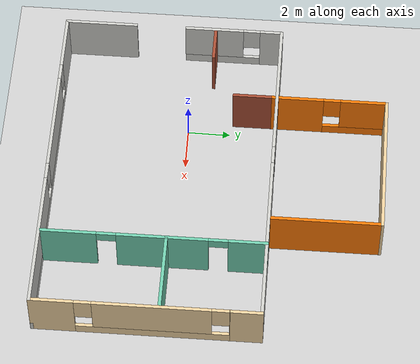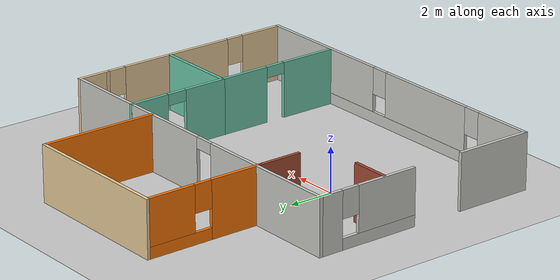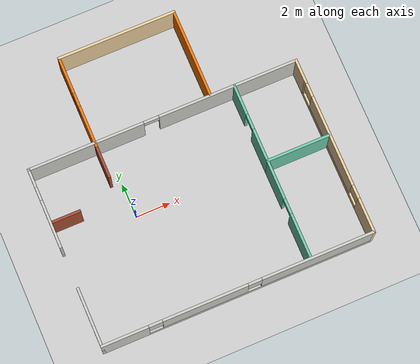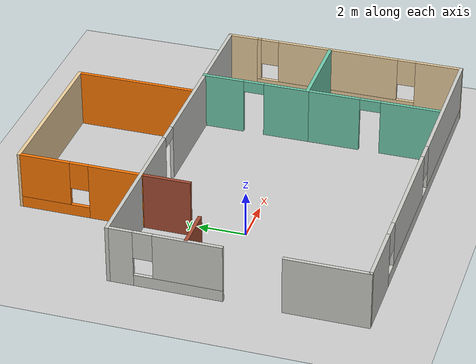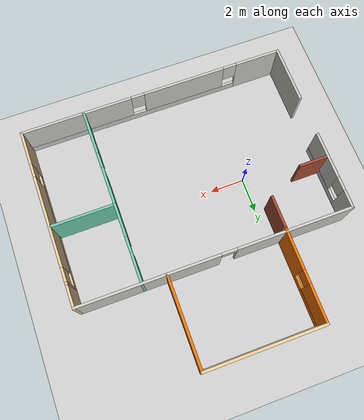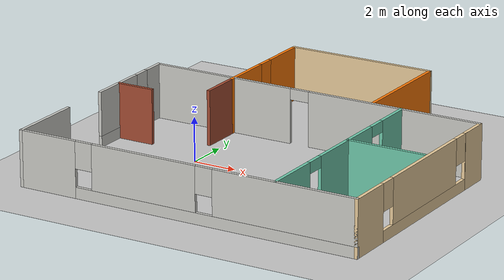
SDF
<sdf version="1.6">
 <world name="default">
  <model name="ground_plane">
   <static>1</static>
   <link name="link">
    <collision name="collision">
     <geometry><plane><normal>0 0 1</normal><size>100 100</size></plane></geometry>
     <surface>
      <contact><collide_bitmask>65535</collide_bitmask></contact>
      <friction><ode><mu>100</mu><mu2>50</mu2></ode></friction>
     </surface>
    </collision>
    <visual name="visual">
     <cast_shadows>0</cast_shadows>
     <geometry><plane><normal>0 0 1</normal><size>100 100</size></plane></geometry>
     <material>
      <script><uri>file://media/materials/scripts/gazebo.material</uri><name>Gazebo/Grey</name></script>
     </material>
    </visual>
   </link>
  </model>
  <model name="Building">
   <pose>3.4271 1.57878 0 0 -0 0</pose>
   <link name="Wall_0">
    <collision name="Wall_0_Collision">
     <geometry><box><size>3.5 0.15 2.5</size></box></geometry>
     <pose>0 0 1.25 0 -0 0</pose>
    </collision>
    <visual name="Wall_0_Visual">
     <pose>0 0 1.25 0 -0 0</pose>
     <geometry><box><size>3.5 0.15 2.5</size></box></geometry>
     <material>
      <script><uri>file://media/materials/scripts/gazebo.material</uri><name>Gazebo/CeilingTiled</name></script>
      <ambient>0.760784 0.662745 0.627451 1</ambient>
     </material>
     <meta><layer>0</layer></meta>
    </visual>
    <pose>-7.925 -6.15604 0 0 0 -1.5708</pose>
   </link>
   <link name="Wall_1">
    <pose>0 -7.83104 0 0 -0 0</pose>
    <visual name="Wall_1_Visual_0">
     <pose>-6.61503 0 1.25 0 -0 0</pose>
     <geometry><box><size>2.76994 0.15 2.5</size></box></geometry>
     <material>
      <script><uri>file://media/materials/scripts/gazebo.material</uri><name>Gazebo/CeilingTiled</name></script>
      <ambient>0.760784 0.662745 0.627451 1</ambient>
     </material>
     <meta><layer>0</layer></meta>
    </visual>
    <collision name="Wall_1_Collision_0">
     <geometry><box><size>2.76994 0.15 2.5</size></box></geometry>
     <pose>-6.61503 0 1.25 0 -0 0</pose>
    </collision>
    <visual name="Wall_1_Visual_1">
     <pose>1.38497 0 0.25 0 -0 0</pose>
     <geometry><box><size>13.2301 0.15 0.5</size></box></geometry>
     <material>
      <script><uri>file://media/materials/scripts/gazebo.material</uri><name>Gazebo/CeilingTiled</name></script>
      <ambient>0.760784 0.662745 0.627451 1</ambient>
     </material>
     <meta><layer>0</layer></meta>
    </visual>
    <collision name="Wall_1_Collision_1">
     <geometry><box><size>13.2301 0.15 0.5</size></box></geometry>
     <pose>1.38497 0 0.25 0 -0 0</pose>
    </collision>
    <visual name="Wall_1_Visual_2">
     <pose>-1.94093 0 1.5 0 -0 0</pose>
     <geometry><box><size>4.97827 0.15 2</size></box></geometry>
     <material>
      <script><uri>file://media/materials/scripts/gazebo.material</uri><name>Gazebo/CeilingTiled</name></script>
      <ambient>0.760784 0.662745 0.627451 1</ambient>
     </material>
     <meta><layer>0</layer></meta>
    </visual>
    <collision name="Wall_1_Collision_2">
     <geometry><box><size>4.97827 0.15 2</size></box></geometry>
     <pose>-1.94093 0 1.5 0 -0 0</pose>
    </collision>
    <visual name="Wall_1_Visual_3">
     <pose>4.6741 0 1.5 0 -0 0</pose>
     <geometry><box><size>6.65179 0.15 2</size></box></geometry>
     <material>
      <script><uri>file://media/materials/scripts/gazebo.material</uri><name>Gazebo/CeilingTiled</name></script>
      <ambient>0.760784 0.662745 0.627451 1</ambient>
     </material>
     <meta><layer>0</layer></meta>
    </visual>
    <collision name="Wall_1_Collision_3">
     <geometry><box><size>6.65179 0.15 2</size></box></geometry>
     <pose>4.6741 0 1.5 0 -0 0</pose>
    </collision>
    <visual name="Wall_1_Visual_4">
     <pose>-4.83006 0 1.9 0 -0 0</pose>
     <geometry><box><size>0.8 0.15 1.2</size></box></geometry>
     <material>
      <script><uri>file://media/materials/scripts/gazebo.material</uri><name>Gazebo/CeilingTiled</name></script>
      <ambient>0.760784 0.662745 0.627451 1</ambient>
     </material>
     <meta><layer>0</layer></meta>
    </visual>
    <collision name="Wall_1_Collision_4">
     <geometry><box><size>0.8 0.15 1.2</size></box></geometry>
     <pose>-4.83006 0 1.9 0 -0 0</pose>
    </collision>
    <visual name="Wall_1_Visual_5">
     <pose>0.948206 0 1.9 0 -0 0</pose>
     <geometry><box><size>0.8 0.15 1.2</size></box></geometry>
     <material>
      <script><uri>file://media/materials/scripts/gazebo.material</uri><name>Gazebo/CeilingTiled</name></script>
      <ambient>0.760784 0.662745 0.627451 1</ambient>
     </material>
     <meta><layer>0</layer></meta>
    </visual>
    <collision name="Wall_1_Collision_5">
     <geometry><box><size>0.8 0.15 1.2</size></box></geometry>
     <pose>0.948206 0 1.9 0 -0 0</pose>
    </collision>
   </link>
   <link name="Wall_11">
    <pose>4.21981 0.321249 0 0 0 -1.5708</pose>
    <visual name="Wall_11_Visual_0">
     <pose>-1.45124 0 1.25 0 -0 0</pose>
     <geometry><box><size>1.84753 0.15 2.5</size></box></geometry>
     <material>
      <script><uri>file://media/materials/scripts/gazebo.material</uri><name>Gazebo/Grey</name></script>
      <ambient>0.435294 0.796078 0.67451 1</ambient>
     </material>
     <meta><layer>0</layer></meta>
    </visual>
    <collision name="Wall_11_Collision_0">
     <geometry><box><size>1.84753 0.15 2.5</size></box></geometry>
     <pose>-1.45124 0 1.25 0 -0 0</pose>
    </collision>
    <visual name="Wall_11_Visual_1">
     <pose>1.37376 0 1.25 0 -0 0</pose>
     <geometry><box><size>2.00247 0.15 2.5</size></box></geometry>
     <material>
      <script><uri>file://media/materials/scripts/gazebo.material</uri><name>Gazebo/Grey</name></script>
      <ambient>0.435294 0.796078 0.67451 1</ambient>
     </material>
     <meta><layer>0</layer></meta>
    </visual>
    <collision name="Wall_11_Collision_1">
     <geometry><box><size>2.00247 0.15 2.5</size></box></geometry>
     <pose>1.37376 0 1.25 0 -0 0</pose>
    </collision>
    <visual name="Wall_11_Visual_2">
     <pose>-0.077469 0 2.25 0 -0 0</pose>
     <geometry><box><size>0.9 0.15 0.5</size></box></geometry>
     <material>
      <script><uri>file://media/materials/scripts/gazebo.material</uri><name>Gazebo/Grey</name></script>
      <ambient>0.435294 0.796078 0.67451 1</ambient>
     </material>
     <meta><layer>0</layer></meta>
    </visual>
    <collision name="Wall_11_Collision_2">
     <geometry><box><size>0.9 0.15 0.5</size></box></geometry>
     <pose>-0.077469 0 2.25 0 -0 0</pose>
    </collision>
   </link>
   <link name="Wall_12">
    <collision name="Wall_12_Collision">
     <geometry><box><size>3.75 0.15 2.5</size></box></geometry>
     <pose>0 0 1.25 0 -0 0</pose>
    </collision>
    <visual name="Wall_12_Visual">
     <pose>0 0 1.25 0 -0 0</pose>
     <geometry><box><size>3.75 0.15 2.5</size></box></geometry>
     <material>
      <script><uri>file://media/materials/scripts/gazebo.material</uri><name>Gazebo/Grey</name></script>
      <ambient>0.435294 0.796078 0.67451 1</ambient>
     </material>
     <meta><layer>0</layer></meta>
    </visual>
    <pose>6.01981 -1.97875 0 0 -0 0</pose>
   </link>
   <link name="Wall_15">
    <pose>-4.03782 5.07174 0 0 -0 1.5708</pose>
    <visual name="Wall_15_Visual_0">
     <pose>-1.46972 0 1.25 0 -0 0</pose>
     <geometry><box><size>2.48164 0.15 2.5</size></box></geometry>
     <material>
      <script><uri>file://media/materials/scripts/gazebo.material</uri><name>Gazebo/Grey</name></script>
      <ambient>0.996078 0.47451 0.0196078 1</ambient>
     </material>
     <meta><layer>0</layer></meta>
    </visual>
    <collision name="Wall_15_Collision_0">
     <geometry><box><size>2.48164 0.15 2.5</size></box></geometry>
     <pose>-1.46972 0 1.25 0 -0 0</pose>
    </collision>
    <visual name="Wall_15_Visual_1">
     <pose>1.24082 0 0.25 0 -0 0</pose>
     <geometry><box><size>2.93944 0.15 0.5</size></box></geometry>
     <material>
      <script><uri>file://media/materials/scripts/gazebo.material</uri><name>Gazebo/Grey</name></script>
      <ambient>0.996078 0.47451 0.0196078 1</ambient>
     </material>
     <meta><layer>0</layer></meta>
    </visual>
    <collision name="Wall_15_Collision_1">
     <geometry><box><size>2.93944 0.15 0.5</size></box></geometry>
     <pose>1.24082 0 0.25 0 -0 0</pose>
    </collision>
    <visual name="Wall_15_Visual_2">
     <pose>1.64082 0 1.5 0 -0 0</pose>
     <geometry><box><size>2.13944 0.15 2</size></box></geometry>
     <material>
      <script><uri>file://media/materials/scripts/gazebo.material</uri><name>Gazebo/Grey</name></script>
      <ambient>0.996078 0.47451 0.0196078 1</ambient>
     </material>
     <meta><layer>0</layer></meta>
    </visual>
    <collision name="Wall_15_Collision_2">
     <geometry><box><size>2.13944 0.15 2</size></box></geometry>
     <pose>1.64082 0 1.5 0 -0 0</pose>
    </collision>
    <visual name="Wall_15_Visual_3">
     <pose>0.1711 0 1.9 0 -0 0</pose>
     <geometry><box><size>0.8 0.15 1.2</size></box></geometry>
     <material>
      <script><uri>file://media/materials/scripts/gazebo.material</uri><name>Gazebo/Grey</name></script>
      <ambient>0.996078 0.47451 0.0196078 1</ambient>
     </material>
     <meta><layer>0</layer></meta>
    </visual>
    <collision name="Wall_15_Collision_3">
     <geometry><box><size>0.8 0.15 1.2</size></box></geometry>
     <pose>0.1711 0 1.9 0 -0 0</pose>
    </collision>
   </link>
   <link name="Wall_16">
    <collision name="Wall_16_Collision">
     <geometry><box><size>7 0.15 2.5</size></box></geometry>
     <pose>0 0 1.25 0 -0 0</pose>
    </collision>
    <visual name="Wall_16_Visual">
     <pose>0 0 1.25 0 -0 0</pose>
     <geometry><box><size>7 0.15 2.5</size></box></geometry>
     <material>
      <script><uri>file://media/materials/scripts/gazebo.material</uri><name>Gazebo/Grey</name></script>
      <ambient>0.921569 0.807843 0.615686 1</ambient>
     </material>
     <meta><layer>0</layer></meta>
    </visual>
    <pose>-0.612818 7.83104 0 0 -0 0</pose>
   </link>
   <link name="Wall_17">
    <collision name="Wall_17_Collision">
     <geometry><box><size>5.17108 0.15 2.5</size></box></geometry>
     <pose>0 0 1.25 0 -0 0</pose>
    </collision>
    <visual name="Wall_17_Visual">
     <pose>0 0 1.25 0 -0 0</pose>
     <geometry><box><size>5.17108 0.15 2.5</size></box></geometry>
     <material>
      <script><uri>file://media/materials/scripts/gazebo.material</uri><name>Gazebo/Grey</name></script>
      <ambient>0.996078 0.47451 0.0196078 1</ambient>
     </material>
     <meta><layer>0</layer></meta>
    </visual>
    <pose>2.81218 5.19674 0 0 0 -1.5708</pose>
   </link>
   <link name="Wall_19">
    <pose>4.21981 -4.90375 0 0 0 -1.5708</pose>
    <visual name="Wall_19_Visual_0">
     <pose>-1.80811 0 1.25 0 -0 0</pose>
     <geometry><box><size>2.38377 0.15 2.5</size></box></geometry>
     <material>
      <script><uri>file://media/materials/scripts/gazebo.material</uri><name>Gazebo/Grey</name></script>
      <ambient>0.435294 0.796078 0.67451 1</ambient>
     </material>
     <meta><layer>0</layer></meta>
    </visual>
    <collision name="Wall_19_Collision_0">
     <geometry><box><size>2.38377 0.15 2.5</size></box></geometry>
     <pose>-1.80811 0 1.25 0 -0 0</pose>
    </collision>
    <visual name="Wall_19_Visual_1">
     <pose>1.64189 0 1.25 0 -0 0</pose>
     <geometry><box><size>2.71623 0.15 2.5</size></box></geometry>
     <material>
      <script><uri>file://media/materials/scripts/gazebo.material</uri><name>Gazebo/Grey</name></script>
      <ambient>0.435294 0.796078 0.67451 1</ambient>
     </material>
     <meta><layer>0</layer></meta>
    </visual>
    <collision name="Wall_19_Collision_1">
     <geometry><box><size>2.71623 0.15 2.5</size></box></geometry>
     <pose>1.64189 0 1.25 0 -0 0</pose>
    </collision>
    <visual name="Wall_19_Visual_2">
     <pose>-0.166229 0 2.25 0 -0 0</pose>
     <geometry><box><size>0.9 0.15 0.5</size></box></geometry>
     <material>
      <script><uri>file://media/materials/scripts/gazebo.material</uri><name>Gazebo/Grey</name></script>
      <ambient>0.435294 0.796078 0.67451 1</ambient>
     </material>
     <meta><layer>0</layer></meta>
    </visual>
    <collision name="Wall_19_Collision_2">
     <geometry><box><size>0.9 0.15 0.5</size></box></geometry>
     <pose>-0.166229 0 2.25 0 -0 0</pose>
    </collision>
   </link>
   <link name="Wall_2">
    <pose>7.925 -3.28104 0 0 -0 1.5708</pose>
    <visual name="Wall_2_Visual_0">
     <pose>-3.58851 0 1.25 0 -0 0</pose>
     <geometry><box><size>2.07299 0.15 2.5</size></box></geometry>
     <material>
      <script><uri>file://media/materials/scripts/gazebo.material</uri><name>Gazebo/Grey</name></script>
      <ambient>0.921569 0.807843 0.615686 1</ambient>
     </material>
     <meta><layer>0</layer></meta>
    </visual>
    <collision name="Wall_2_Collision_0">
     <geometry><box><size>2.07299 0.15 2.5</size></box></geometry>
     <pose>-3.58851 0 1.25 0 -0 0</pose>
    </collision>
    <visual name="Wall_2_Visual_1">
     <pose>1.03649 0 0.25 0 -0 0</pose>
     <geometry><box><size>7.17701 0.15 0.5</size></box></geometry>
     <material>
      <script><uri>file://media/materials/scripts/gazebo.material</uri><name>Gazebo/Grey</name></script>
      <ambient>0.921569 0.807843 0.615686 1</ambient>
     </material>
     <meta><layer>0</layer></meta>
    </visual>
    <collision name="Wall_2_Collision_1">
     <geometry><box><size>7.17701 0.15 0.5</size></box></geometry>
     <pose>1.03649 0 0.25 0 -0 0</pose>
    </collision>
    <visual name="Wall_2_Visual_2">
     <pose>0.951131 0 1.5 0 -0 0</pose>
     <geometry><box><size>5.40629 0.15 2</size></box></geometry>
     <material>
      <script><uri>file://media/materials/scripts/gazebo.material</uri><name>Gazebo/Grey</name></script>
      <ambient>0.921569 0.807843 0.615686 1</ambient>
     </material>
     <meta><layer>0</layer></meta>
    </visual>
    <collision name="Wall_2_Collision_2">
     <geometry><box><size>5.40629 0.15 2</size></box></geometry>
     <pose>0.951131 0 1.5 0 -0 0</pose>
    </collision>
    <visual name="Wall_2_Visual_3">
     <pose>4.53964 0 1.5 0 -0 0</pose>
     <geometry><box><size>0.170724 0.15 2</size></box></geometry>
     <material>
      <script><uri>file://media/materials/scripts/gazebo.material</uri><name>Gazebo/Grey</name></script>
      <ambient>0.921569 0.807843 0.615686 1</ambient>
     </material>
     <meta><layer>0</layer></meta>
    </visual>
    <collision name="Wall_2_Collision_3">
     <geometry><box><size>0.170724 0.15 2</size></box></geometry>
     <pose>4.53964 0 1.5 0 -0 0</pose>
    </collision>
    <visual name="Wall_2_Visual_4">
     <pose>-2.15201 0 1.9 0 -0 0</pose>
     <geometry><box><size>0.8 0.15 1.2</size></box></geometry>
     <material>
      <script><uri>file://media/materials/scripts/gazebo.material</uri><name>Gazebo/Grey</name></script>
      <ambient>0.921569 0.807843 0.615686 1</ambient>
     </material>
     <meta><layer>0</layer></meta>
    </visual>
    <collision name="Wall_2_Collision_4">
     <geometry><box><size>0.8 0.15 1.2</size></box></geometry>
     <pose>-2.15201 0 1.9 0 -0 0</pose>
    </collision>
    <visual name="Wall_2_Visual_5">
     <pose>4.05428 0 1.9 0 -0 0</pose>
     <geometry><box><size>0.8 0.15 1.2</size></box></geometry>
     <material>
      <script><uri>file://media/materials/scripts/gazebo.material</uri><name>Gazebo/Grey</name></script>
      <ambient>0.921569 0.807843 0.615686 1</ambient>
     </material>
     <meta><layer>0</layer></meta>
    </visual>
    <collision name="Wall_2_Collision_5">
     <geometry><box><size>0.8 0.15 1.2</size></box></geometry>
     <pose>4.05428 0 1.9 0 -0 0</pose>
    </collision>
   </link>
   <link name="Wall_3">
    <collision name="Wall_3_Collision">
     <geometry><box><size>1.5 0.15 2.5</size></box></geometry>
     <pose>0 0 1.25 0 -0 0</pose>
    </collision>
    <visual name="Wall_3_Visual">
     <pose>0 0 1.25 0 -0 0</pose>
     <geometry><box><size>1.5 0.15 2.5</size></box></geometry>
     <material>
      <script><uri>file://media/materials/scripts/gazebo.material</uri><name>Gazebo/Grey</name></script>
      <ambient>0.921569 0.807843 0.615686 1</ambient>
     </material>
     <meta><layer>0</layer></meta>
    </visual>
    <pose>7.925 1.94396 0 0 -0 1.5708</pose>
   </link>
   <link name="Wall_4">
    <pose>0 2.61896 0 0 -0 3.14159</pose>
    <visual name="Wall_4_Visual_0">
     <pose>-3.86981 0 1.25 0 -0 0</pose>
     <geometry><box><size>8.26037 0.15 2.5</size></box></geometry>
     <material>
      <script><uri>file://media/materials/scripts/gazebo.material</uri><name>Gazebo/CeilingTiled</name></script>
      <ambient>0.760784 0.662745 0.627451 1</ambient>
     </material>
     <meta><layer>0</layer></meta>
    </visual>
    <collision name="Wall_4_Collision_0">
     <geometry><box><size>8.26037 0.15 2.5</size></box></geometry>
     <pose>-3.86981 0 1.25 0 -0 0</pose>
    </collision>
    <visual name="Wall_4_Visual_1">
     <pose>4.58019 0 1.25 0 -0 0</pose>
     <geometry><box><size>6.83963 0.15 2.5</size></box></geometry>
     <material>
      <script><uri>file://media/materials/scripts/gazebo.material</uri><name>Gazebo/CeilingTiled</name></script>
      <ambient>0.760784 0.662745 0.627451 1</ambient>
     </material>
     <meta><layer>0</layer></meta>
    </visual>
    <collision name="Wall_4_Collision_1">
     <geometry><box><size>6.83963 0.15 2.5</size></box></geometry>
     <pose>4.58019 0 1.25 0 -0 0</pose>
    </collision>
    <visual name="Wall_4_Visual_2">
     <pose>0.710372 0 2.25 0 -0 0</pose>
     <geometry><box><size>0.9 0.15 0.5</size></box></geometry>
     <material>
      <script><uri>file://media/materials/scripts/gazebo.material</uri><name>Gazebo/CeilingTiled</name></script>
      <ambient>0.760784 0.662745 0.627451 1</ambient>
     </material>
     <meta><layer>0</layer></meta>
    </visual>
    <collision name="Wall_4_Collision_2">
     <geometry><box><size>0.9 0.15 0.5</size></box></geometry>
     <pose>0.710372 0 2.25 0 -0 0</pose>
    </collision>
   </link>
   <link name="Wall_5">
    <pose>-7.925 0.31896 0 0 0 -1.5708</pose>
    <visual name="Wall_5_Visual_0">
     <pose>-1.81518 0 1.25 0 -0 0</pose>
     <geometry><box><size>1.11965 0.15 2.5</size></box></geometry>
     <material>
      <script><uri>file://media/materials/scripts/gazebo.material</uri><name>Gazebo/CeilingTiled</name></script>
      <ambient>0.760784 0.662745 0.627451 1</ambient>
     </material>
     <meta><layer>0</layer></meta>
    </visual>
    <collision name="Wall_5_Collision_0">
     <geometry><box><size>1.11965 0.15 2.5</size></box></geometry>
     <pose>-1.81518 0 1.25 0 -0 0</pose>
    </collision>
    <visual name="Wall_5_Visual_1">
     <pose>0.559823 0 0.25 0 -0 0</pose>
     <geometry><box><size>3.63035 0.15 0.5</size></box></geometry>
     <material>
      <script><uri>file://media/materials/scripts/gazebo.material</uri><name>Gazebo/CeilingTiled</name></script>
      <ambient>0.760784 0.662745 0.627451 1</ambient>
     </material>
     <meta><layer>0</layer></meta>
    </visual>
    <collision name="Wall_5_Collision_1">
     <geometry><box><size>3.63035 0.15 0.5</size></box></geometry>
     <pose>0.559823 0 0.25 0 -0 0</pose>
    </collision>
    <visual name="Wall_5_Visual_2">
     <pose>0.959823 0 1.5 0 -0 0</pose>
     <geometry><box><size>2.83035 0.15 2</size></box></geometry>
     <material>
      <script><uri>file://media/materials/scripts/gazebo.material</uri><name>Gazebo/CeilingTiled</name></script>
      <ambient>0.760784 0.662745 0.627451 1</ambient>
     </material>
     <meta><layer>0</layer></meta>
    </visual>
    <collision name="Wall_5_Collision_2">
     <geometry><box><size>2.83035 0.15 2</size></box></geometry>
     <pose>0.959823 0 1.5 0 -0 0</pose>
    </collision>
    <visual name="Wall_5_Visual_3">
     <pose>-0.855354 0 1.9 0 -0 0</pose>
     <geometry><box><size>0.8 0.15 1.2</size></box></geometry>
     <material>
      <script><uri>file://media/materials/scripts/gazebo.material</uri><name>Gazebo/CeilingTiled</name></script>
      <ambient>0.760784 0.662745 0.627451 1</ambient>
     </material>
     <meta><layer>0</layer></meta>
    </visual>
    <collision name="Wall_5_Collision_3">
     <geometry><box><size>0.8 0.15 1.2</size></box></geometry>
     <pose>-0.855354 0 1.9 0 -0 0</pose>
    </collision>
   </link>
   <link name="Wall_7">
    <collision name="Wall_7_Collision">
     <geometry><box><size>1.75 0.15 2.5</size></box></geometry>
     <pose>0 0 1.25 0 -0 0</pose>
    </collision>
    <visual name="Wall_7_Visual">
     <pose>0 0 1.25 0 -0 0</pose>
     <geometry><box><size>1.75 0.15 2.5</size></box></geometry>
     <material>
      <script><uri>file://media/materials/scripts/gazebo.material</uri><name>Gazebo/Bricks</name></script>
      <ambient>1 1 1 1</ambient>
     </material>
     <meta><layer>0</layer></meta>
    </visual>
    <pose>-7.05437 -0.570775 0 0 -0 0</pose>
   </link>
   <link name="Wall_9">
    <collision name="Wall_9_Collision">
     <geometry><box><size>2 0.15 2.5</size></box></geometry>
     <pose>0 0 1.25 0 -0 0</pose>
    </collision>
    <visual name="Wall_9_Visual">
     <pose>0 0 1.25 0 -0 0</pose>
     <geometry><box><size>2 0.15 2.5</size></box></geometry>
     <material>
      <script><uri>file://media/materials/scripts/gazebo.material</uri><name>Gazebo/Bricks</name></script>
      <ambient>1 1 1 1</ambient>
     </material>
     <meta><layer>0</layer></meta>
    </visual>
    <pose>-4.03782 1.5112 0 0 0 -1.5708</pose>
   </link>
   <static>1</static>
  </model>
 </world>
</sdf>
